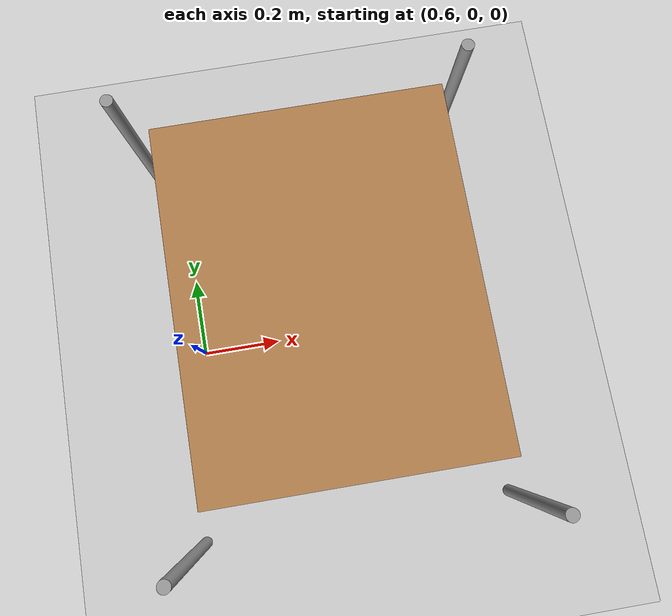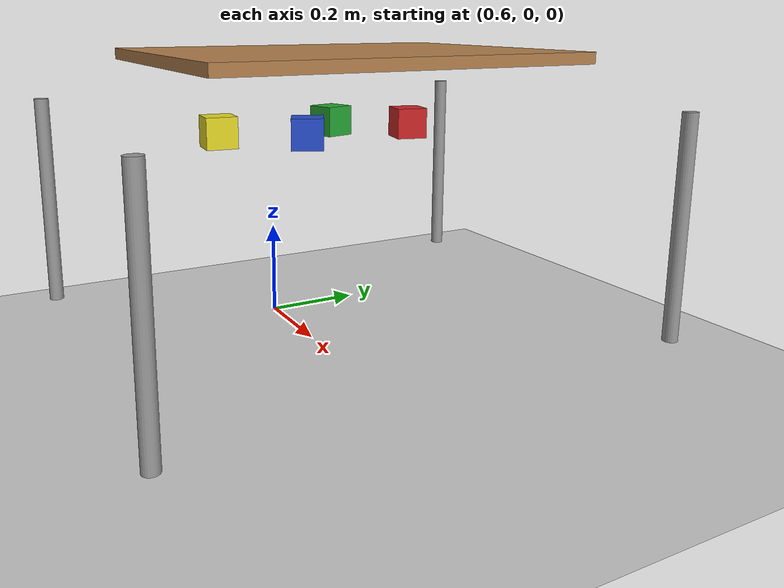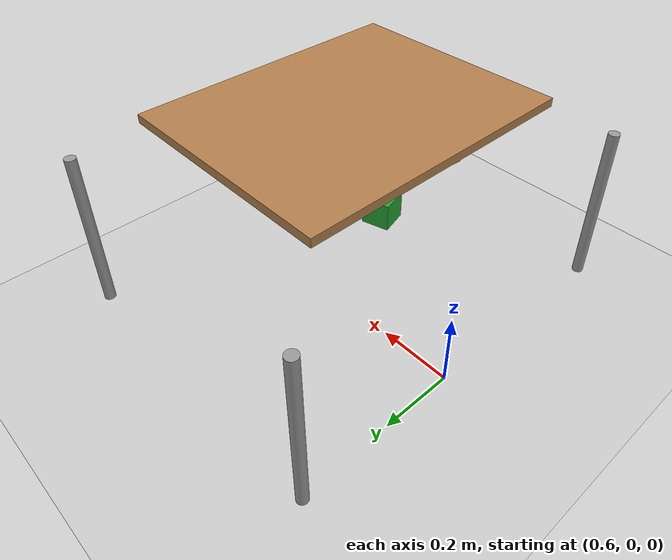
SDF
<sdf version="1.7">
 <world name="default">
  <physics type="ode">
   <ode>
    <solver>
     <type>quick</type>
     <iters>20</iters>
     <sor>1</sor>
     <use_dynamic_moi_rescaling>0</use_dynamic_moi_rescaling>
    </solver>
    <constraints>
     <cfm>0</cfm>
     <erp>0.2</erp>
     <contact_max_correcting_vel>100</contact_max_correcting_vel>
     <contact_surface_layer>0</contact_surface_layer>
    </constraints>
   </ode>
   <real_time_update_rate>1000</real_time_update_rate>
   <max_step_size>0.001</max_step_size>
   <real_time_factor>1</real_time_factor>
  </physics>
  <light name="sun" type="directional">
   <pose>0 0 10 0 -0 0</pose>
   <diffuse>0.8 0.8 0.8 1</diffuse>
   <specular>0.2 0.2 0.2 1</specular>
   <attenuation>
    <range>1000</range>
    <constant>0.9</constant>
    <linear>0.01</linear>
    <quadratic>0.001</quadratic>
   </attenuation>
   <direction>-0.5 0.1 -0.9</direction>
   <spot><inner_angle>0</inner_angle><outer_angle>0</outer_angle><falloff>0</falloff></spot>
  </light>
  <model name="ground_plane">
   <static>1</static>
   <link name="link">
    <collision name="collision">
     <geometry><plane><normal>0 0 1</normal><size>100 100</size></plane></geometry>
     <surface>
      <contact><collide_bitmask>65535</collide_bitmask></contact>
      <friction><ode><mu>100</mu><mu2>50</mu2></ode></friction>
     </surface>
    </collision>
    <visual name="visual">
     <cast_shadows>0</cast_shadows>
     <geometry><plane><normal>0 0 1</normal><size>100 100</size></plane></geometry>
     <material>
      <script><uri>file://media/materials/scripts/gazebo.material</uri><name>Gazebo/Grey</name></script>
     </material>
    </visual>
   </link>
  </model>
  <model name="table1">
   <static>1</static>
   <link name="link">
    <collision name="surface">
     <pose>0 0 0.42 0 -0 0</pose>
     <geometry><box><size>0.7 0.56 0.021</size></box></geometry>
    </collision>
    <visual name="visual1">
     <pose>0 0 0.6 0 -0 0</pose>
     <geometry><box><size>0.7 0.56 0.021</size></box></geometry>
     <material>
      <script><uri>file://media/materials/scripts/gazebo.material</uri><name>Gazebo/Wood</name></script>
     </material>
    </visual>
    <collision name="front_left_leg">
     <pose>0.48 0.38 0.3 0 -0 0</pose>
     <geometry><cylinder><radius>0.014</radius><length>0.42</length></cylinder></geometry>
    </collision>
    <visual name="front_left_leg">
     <pose>0.48 0.38 0.3 0 -0 0</pose>
     <geometry><cylinder><radius>0.014</radius><length>0.42</length></cylinder></geometry>
     <material>
      <script><uri>file://media/materials/scripts/gazebo.material</uri><name>Gazebo/Grey</name></script>
     </material>
    </visual>
    <collision name="front_right_leg">
     <pose>0.48 -0.38 0.3 0 -0 0</pose>
     <geometry><cylinder><radius>0.014</radius><length>0.42</length></cylinder></geometry>
    </collision>
    <visual name="front_right_leg">
     <pose>0.48 -0.38 0.3 0 -0 0</pose>
     <geometry><cylinder><radius>0.014</radius><length>0.42</length></cylinder></geometry>
     <material>
      <script><uri>file://media/materials/scripts/gazebo.material</uri><name>Gazebo/Grey</name></script>
     </material>
    </visual>
    <collision name="back_right_leg">
     <pose>-0.48 -0.38 0.3 0 -0 0</pose>
     <geometry><cylinder><radius>0.014</radius><length>0.42</length></cylinder></geometry>
    </collision>
    <visual name="back_right_leg">
     <pose>-0.48 -0.38 0.3 0 -0 0</pose>
     <geometry><cylinder><radius>0.014</radius><length>0.42</length></cylinder></geometry>
     <material>
      <script><uri>file://media/materials/scripts/gazebo.material</uri><name>Gazebo/Grey</name></script>
     </material>
    </visual>
    <collision name="back_left_leg">
     <pose>-0.48 0.38 0.3 0 -0 0</pose>
     <geometry><cylinder><radius>0.014</radius><length>0.42</length></cylinder></geometry>
    </collision>
    <visual name="back_left_leg">
     <pose>-0.48 0.38 0.3 0 -0 0</pose>
     <geometry><cylinder><radius>0.014</radius><length>0.42</length></cylinder></geometry>
     <material>
      <script><uri>file://media/materials/scripts/gazebo.material</uri><name>Gazebo/Grey</name></script>
     </material>
    </visual>
    <velocity_decay><linear>0</linear><angular>0</angular></velocity_decay>
   </link>
   <pose>0.934738 0.003002 0 0 -0 1.57</pose>
  </model>
  <model name="cube_green">
   <static>0</static>
   <link name="link">
    <inertial>
     <mass>0.01</mass>
     <inertia><ixx>6e-05</ixx><ixy>0</ixy><ixz>0</ixz><iyy>6e-05</iyy><iyz>0</iyz><izz>6e-05</izz></inertia>
    </inertial>
    <collision name="collision">
     <geometry><box><size>0.06 0.06 0.06</size></box></geometry>
     <surface><contact><ode><min_depth>0.005</min_depth></ode></contact></surface>
    </collision>
    <visual name="visual">
     <geometry><box><size>0.06 0.06 0.06</size></box></geometry>
     <material>
      <script><uri>file://media/materials/scripts/gazebo.material</uri><name>Gazebo/Green</name></script>
     </material>
    </visual>
   </link>
   <pose>0.770627 0.062028 0.459846 0.001003 -0.001816 0.274303</pose>
  </model>
  <model name="cube_red">
   <static>0</static>
   <link name="link">
    <inertial>
     <mass>0.01</mass>
     <inertia><ixx>6e-05</ixx><ixy>0</ixy><ixz>0</ixz><iyy>6e-05</iyy><iyz>0</iyz><izz>6e-05</izz></inertia>
    </inertial>
    <collision name="collision">
     <geometry><box><size>0.06 0.06 0.06</size></box></geometry>
     <surface><contact><ode><min_depth>0.005</min_depth></ode></contact></surface>
    </collision>
    <visual name="visual">
     <geometry><box><size>0.06 0.06 0.06</size></box></geometry>
     <material>
      <script><uri>file://media/materials/scripts/gazebo.material</uri><name>Gazebo/Red</name></script>
     </material>
    </visual>
   </link>
   <pose>0.875888 0.184161 0.460178 2.7e-05 -5e-05 -0.216943</pose>
  </model>
  <model name="cube_blue">
   <static>0</static>
   <link name="link">
    <inertial>
     <mass>0.01</mass>
     <inertia><ixx>6e-05</ixx><ixy>0</ixy><ixz>0</ixz><iyy>6e-05</iyy><iyz>0</iyz><izz>6e-05</izz></inertia>
    </inertial>
    <collision name="collision">
     <geometry><box><size>0.06 0.06 0.06</size></box></geometry>
     <surface><contact><ode><min_depth>0.005</min_depth></ode></contact></surface>
    </collision>
    <visual name="visual">
     <geometry><box><size>0.06 0.06 0.06</size></box></geometry>
     <material>
      <script><uri>file://media/materials/scripts/gazebo.material</uri><name>Gazebo/Blue</name></script>
     </material>
    </visual>
   </link>
   <pose>0.916862 -0.060003 0.459044 1.4e-05 0.000141 -0.444552</pose>
  </model>
  <model name="cube_yellow">
   <static>0</static>
   <link name="link">
    <inertial>
     <mass>0.01</mass>
     <inertia><ixx>6e-05</ixx><ixy>0</ixy><ixz>0</ixz><iyy>6e-05</iyy><iyz>0</iyz><izz>6e-05</izz></inertia>
    </inertial>
    <collision name="collision">
     <geometry><box><size>0.06 0.06 0.06</size></box></geometry>
     <surface><contact><ode><min_depth>0.005</min_depth></ode></contact></surface>
    </collision>
    <visual name="visual">
     <geometry><box><size>0.06 0.06 0.06</size></box></geometry>
     <material>
      <script><uri>file://media/materials/scripts/gazebo.material</uri><name>Gazebo/Yellow</name></script>
     </material>
    </visual>
   </link>
   <pose>0.828623 -0.202509 0.459648 5.1e-05 9.8e-05 -0.096353</pose>
  </model>
  <gravity>0 0 -9.81</gravity>
  <magnetic_field>6e-06 2.3e-05 -4.2e-05</magnetic_field>
  <atmosphere type="adiabatic"/>
  <scene><ambient>0.4 0.4 0.4 1</ambient><background>0.7 0.7 0.7 1</background><shadows>1</shadows></scene>
  <spherical_coordinates>
   <surface_model>EARTH_WGS84</surface_model>
   <latitude_deg>0</latitude_deg>
   <longitude_deg>0</longitude_deg>
   <elevation>0</elevation>
   <heading_deg>0</heading_deg>
  </spherical_coordinates>
 </world>
</sdf>
